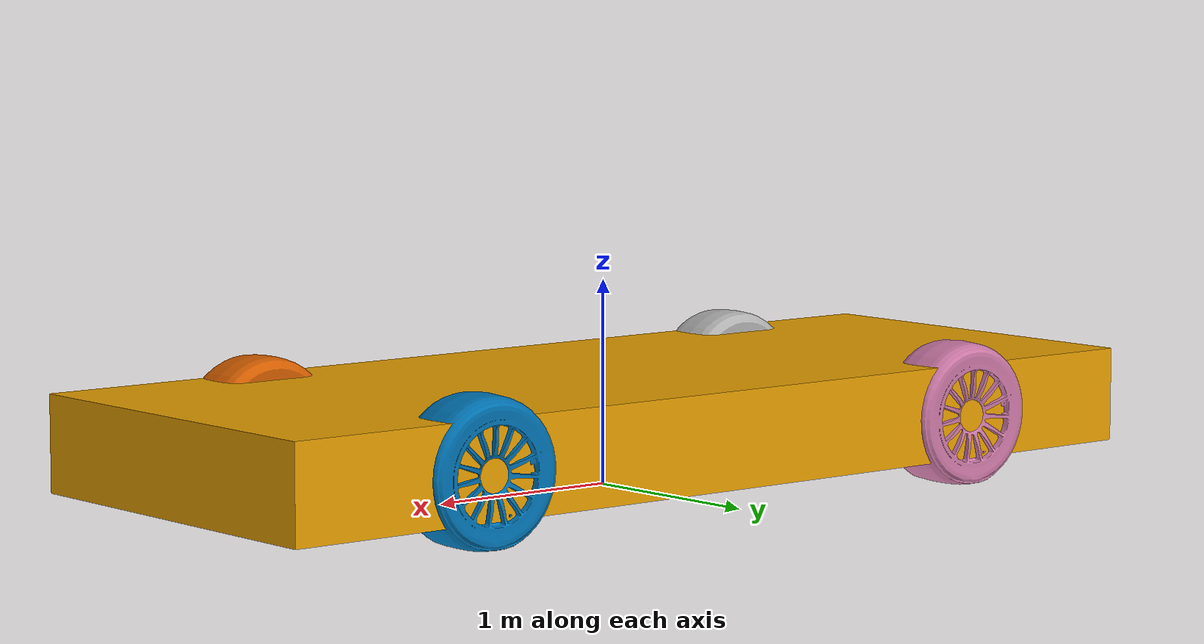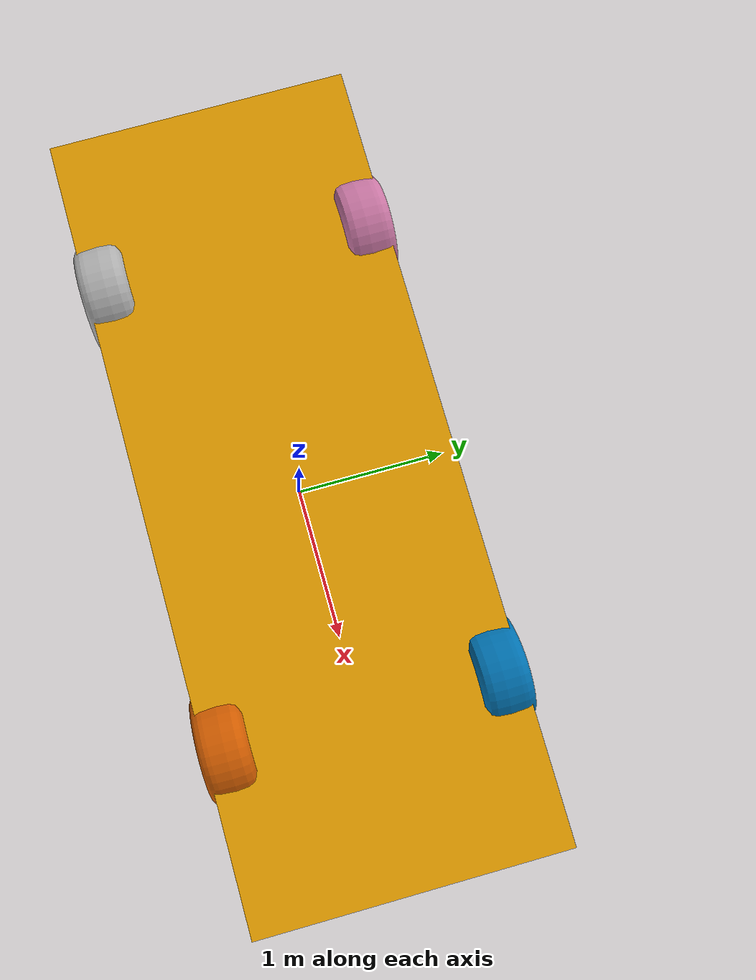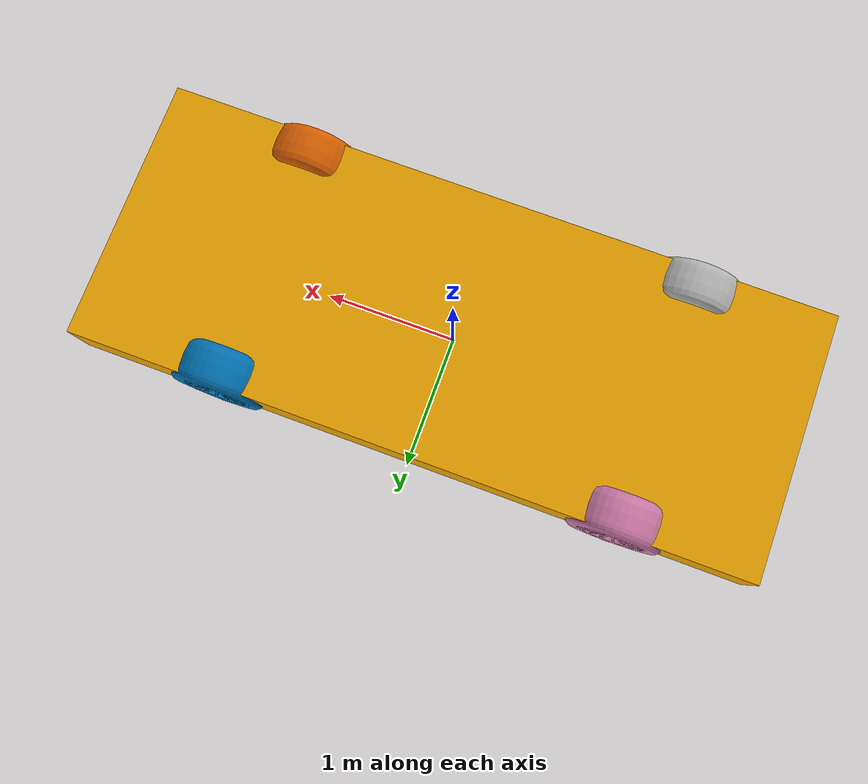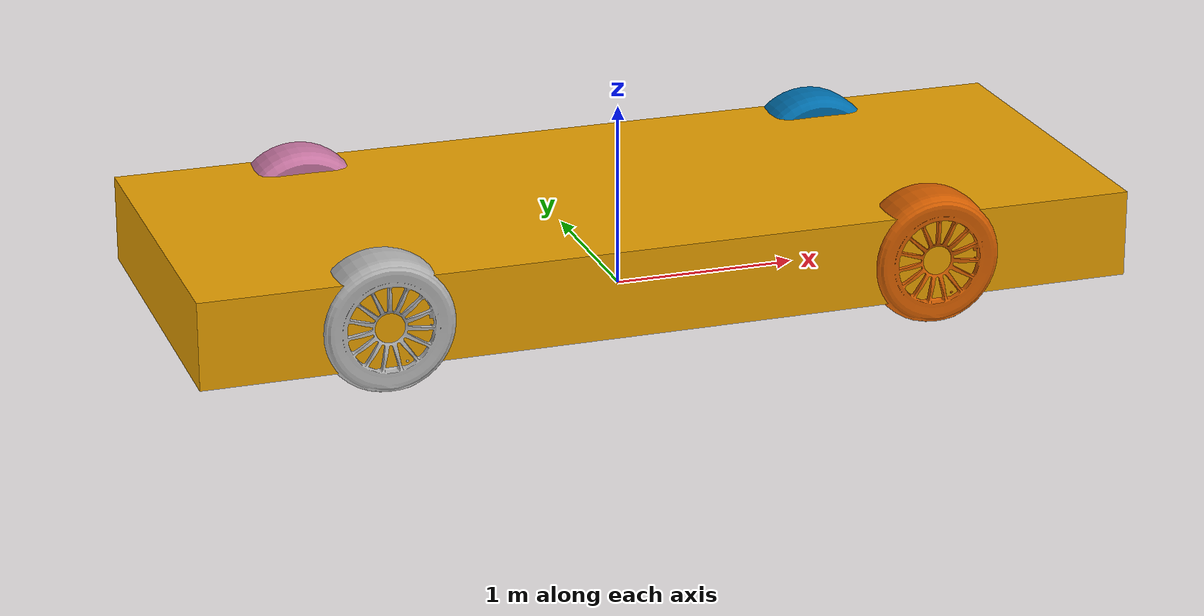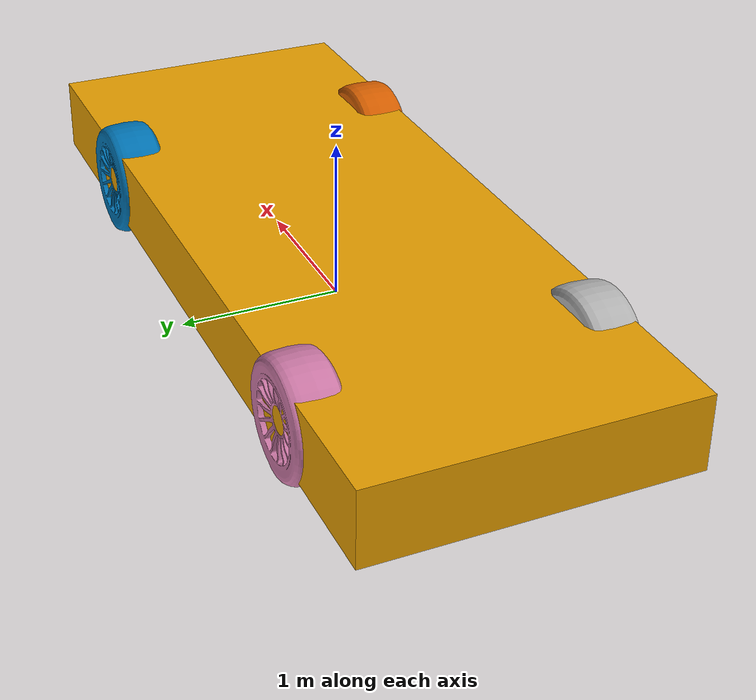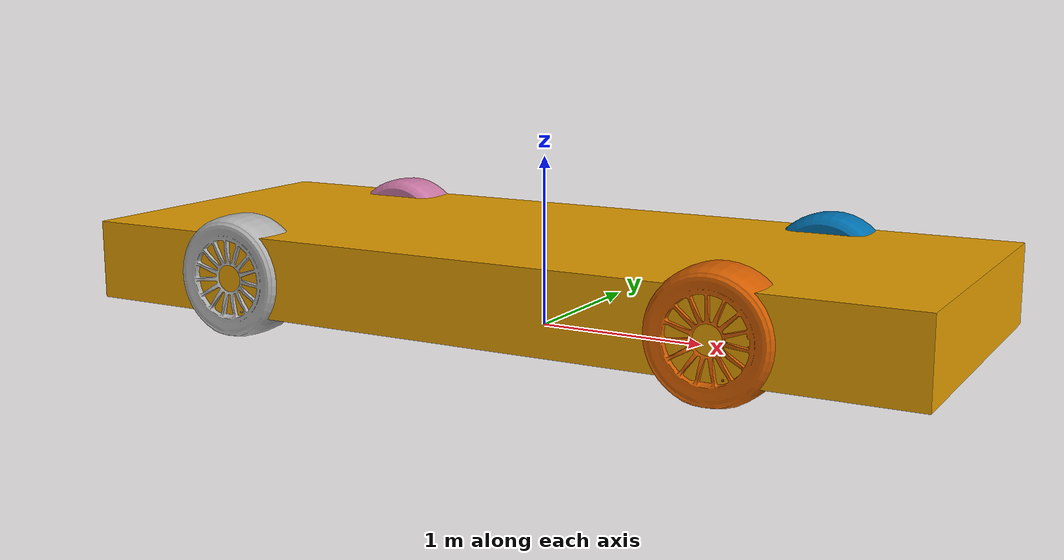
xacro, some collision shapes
<robot xmlns:xacro="http://www.ros.org/wiki/xacro" name="four_wheeled_vehicle">
    <xacro:include filename="$(find four_wheeled_vehicle)/urdf/vehicle/base.urdf.xacro" />
    <xacro:include filename="$(find four_wheeled_vehicle)/urdf/vehicle/actuator/steering.urdf.xacro" />
    <xacro:include filename="$(find four_wheeled_vehicle)/urdf/vehicle/actuator/wheel.urdf.xacro" />
    <xacro:include filename="$(find four_wheeled_vehicle)/urdf/vehicle/sensor/lidar3d.urdf.xacro" />
    <xacro:include filename="$(find four_wheeled_vehicle)/urdf/vehicle/sensor/gps.urdf.xacro" />
    <xacro:include filename="$(find four_wheeled_vehicle)/urdf/vehicle/sensor/imu.urdf.xacro" />
    <xacro:include filename="$(find four_wheeled_vehicle)/urdf/vehicle/sensor/camera.urdf.xacro" />
    <xacro:include filename="$(find four_wheeled_vehicle)/urdf/vehicle/plugin/gazebo_control.xacro" />
    <xacro:include filename="$(find four_wheeled_vehicle)/urdf/vehicle/sensor/laser.urdf.xacro" />
    <xacro:base_xacro />

    <xacro:steering_xacro steering_name="front_left" parent_link="base_link" xyz="1.445 0.833 -0.024" />
    <xacro:steering_xacro steering_name="front_right" parent_link="base_link" xyz="1.445 -0.833 -0.024" />

    <xacro:wheel_xacro wheel_name="front_left" parent_link="front_left_steering_link" xyz="0 0 0" effort="0" velocity="0" />
    <xacro:wheel_right_xacro wheel_name="front_right" parent_link="front_right_steering_link" xyz="0 0 0" effort="0" velocity="0" />
    <xacro:wheel_xacro wheel_name="rear_left" parent_link="base_link" xyz="-1.545 0.833 -0.024" effort="5000" velocity="10000" />
    <xacro:wheel_right_xacro wheel_name="rear_right" parent_link="base_link" xyz="-1.545 -0.833 -0.024" effort="5000" velocity="10000" />

    <xacro:lidar3d_xacro parent_link="base_link" xyz="1.30 0 0.95" />
    <xacro:gps_xacro parent_link="base_link" xyz="-0.50 0 0.95" />
    <xacro:imu_xacro parent_link="base_link" xyz="0 0 0.30" />
    <xacro:camera_xacro parent_link="base_link" xyz="2.20 0 0.60" />
    <xacro:laser_xacro parent_link="base_link" xyz="1.30 0 0.5" />
    <xacro:gazebo_control_plugin />
</robot>

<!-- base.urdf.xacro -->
<robot xmlns:xacro="http://www.ros.org/wiki/xacro">
    <xacro:macro name="base_xacro">
        <link name="base_link">
            <inertial>
                <origin xyz="0 0 0" rpy="0 0 0"/>
                <mass value="2000"/>
                <inertia ixx="1200" ixy="0" ixz="0" iyy="2500" iyz="0" izz="3000"/>
            </inertial>

            <collision name="base_link_collision">
                <origin xyz="0 0 0" rpy="0 0 0"/>
                <geometry>
                    <box size="5.07 1.97 0.47"/>
                </geometry>
            </collision>

            <visual name="base_link_visual">
                <origin xyz="0 0 0" rpy="0 0 0"/>
                <geometry>
                    <mesh filename="file:///home/wu/code/ros2/Pure-tracking-slam-automatic-navigation-system/src/four_wheeled_vehicle/models/four_wheeled_vehicle/meshes/car.dae" scale="1 1 1"/>
                </geometry>
            </visual>
        </link>

        <link name="base_footprint"/>
        <joint name="base_footprint_joint" type="fixed">
            <parent link="base_footprint"/>
            <child link="base_link"/>
            <origin xyz="0 0 0.325" rpy="0 0 0"/>
        </joint>
    </xacro:macro>
</robot>

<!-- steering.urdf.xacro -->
<robot xmlns:xacro="http://www.ros.org/wiki/xacro">
    <xacro:macro name="steering_xacro" params="steering_name parent_link xyz">
        <joint name="${steering_name}_steering_joint" type="revolute">
            <origin xyz="${xyz}" rpy="0 0 0"/>
            <parent link="${parent_link}"/>
            <child link="${steering_name}_steering_link"/>
            <axis xyz="0 0 1"/>
            <limit lower="-0.6" upper="0.6" effort="1000000" velocity="10000"/>
            <dynamics damping="10" friction="0"/>
        </joint>

        <link name="${steering_name}_steering_link">
            <inertial>
                <origin xyz="0 0 0" rpy="0 0 0"/>
                <mass value="5"/>
                <inertia ixx="0.012" ixy="0" ixz="0" iyy="0.025" iyz="0" izz="0.012"/>
            </inertial>

            <visual name="${steering_name}_steering_link_visual">
                <origin xyz="0 0 0" rpy="1.5708 0 0"/>
                <geometry>
                    <cylinder length="0.01" radius="0.1"/>
                </geometry>
            </visual>
        </link>
    </xacro:macro>
</robot>

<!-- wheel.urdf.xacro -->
<robot xmlns:xacro="http://www.ros.org/wiki/xacro">
    <xacro:macro name="wheel_xacro" params="wheel_name parent_link xyz effort velocity">
        <joint name="${wheel_name}_wheel_joint" type="revolute">
            <origin xyz="${xyz}" rpy="0 0 0"/>
            <parent link="${parent_link}"/>
            <child link="${wheel_name}_wheel_link"/>
            <axis xyz="0 1 0"/>
            <limit lower="-10000000000000000" upper="10000000000000000" effort="${effort}" velocity="${velocity}"/>
            <dynamics damping="10.0" friction="0"/>
        </joint>

        <link name="${wheel_name}_wheel_link">
            <inertial>
                <origin xyz="0 0 0" rpy="0 0 0"/>
                <mass value="40"/>
                <inertia ixx="1.4" ixy="0" ixz="0" iyy="2.5" iyz="0" izz="1.4"/>
            </inertial>

            <collision name="${wheel_name}_wheel_link_collision">
                <origin xyz="0 0 0" rpy="1.5708 0 0"/>
                <geometry>
                    <cylinder length="0.35" radius="0.3"/>
                </geometry>
                <surface>
                    <friction>
                        <ode mu="2.0" mu2="1.5" slip1="0.0" slip2="0.0"/>
                    </friction>
                </surface>
            </collision>

            <visual name="${wheel_name}_wheel_link_visual">
                <origin xyz="0 0 0" rpy="0 0 0"/>
                <geometry>
                    <mesh filename="file:///home/wu/code/ros2/Pure-tracking-slam-automatic-navigation-system/src/four_wheeled_vehicle/models/four_wheeled_vehicle/meshes/wheel_l.dae"/>
                </geometry>
            </visual>
        </link>
    </xacro:macro>

    <xacro:macro name="wheel_right_xacro" params="wheel_name parent_link xyz effort velocity">
        <joint name="${wheel_name}_wheel_joint" type="revolute">
            <origin xyz="${xyz}" rpy="0 0 0"/>
            <parent link="${parent_link}"/>
            <child link="${wheel_name}_wheel_link"/>
            <axis xyz="0 1 0"/>
            <limit lower="-10000000000000000" upper="10000000000000000" effort="${effort}" velocity="${velocity}"/>
            <dynamics damping="10.0" friction="0"/>
        </joint>

        <link name="${wheel_name}_wheel_link">
            <inertial>
                <origin xyz="0 0 0" rpy="0 0 0"/>
                <mass value="40"/>
                <inertia ixx="1.4" ixy="0" ixz="0" iyy="2.5" iyz="0" izz="1.4"/>
            </inertial>

            <collision name="${wheel_name}_wheel_link_collision">
                <origin xyz="0 0 0" rpy="1.5708 0 0"/>
                <geometry>
                    <cylinder length="0.35" radius="0.3"/>
                </geometry>
                <surface>
                    <friction>
                        <ode mu="2.0" mu2="1.5" slip1="0.0" slip2="0.0"/>
                    </friction>
                </surface>
            </collision>

            <visual name="${wheel_name}_wheel_link_visual">
                <origin xyz="0 0 0" rpy="0 0 0"/>
                <geometry>
                    <mesh filename="file:///home/wu/code/ros2/Pure-tracking-slam-automatic-navigation-system/src/four_wheeled_vehicle/models/four_wheeled_vehicle/meshes/wheel_r.dae"/>
                </geometry>
            </visual>
        </link>
    </xacro:macro>
</robot>

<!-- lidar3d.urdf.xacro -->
<robot xmlns:xacro="http://www.ros.org/wiki/xacro">
    <xacro:macro name="lidar3d_xacro" params="parent_link xyz">
        <link name="lidar3d_link">
        </link>

        <joint name="lidar3d_fixed_joint" type="fixed">
            <parent link="${parent_link}"/>
            <child link="lidar3d_link"/>
            <origin xyz="${xyz}" rpy="0 0 0"/>
        </joint>

        <gazebo reference="lidar3d_link">
            <sensor type="ray" name="lidar3d">
                <always_on>true</always_on>
                <update_rate>10</update_rate>
                <visualize>false</visualize>
                <ray>
                    <scan>
                        <horizontal>
                            <samples>360</samples>
                            <resolution>1</resolution>
                            <min_angle>-1.3962634</min_angle>
                            <max_angle>1.3962634</max_angle>
                        </horizontal>
                        <vertical>
                            <samples>32</samples>
                            <resolution>1</resolution>
                            <min_angle>-0.261799</min_angle>
                            <max_angle>0.261799</max_angle>
                        </vertical>
                    </scan>
                    <range>
                        <min>0.3</min>
                        <max>100.0</max>
                        <resolution>0.01</resolution>
                    </range>
                    <noise>
                        <type>gaussian</type>
                        <mean>0.0</mean>
                        <stddev>0.02</stddev>
                    </noise>
                </ray>
                <plugin name="gazebo_ros_laser" filename="libgazebo_ros_ray_sensor.so">
                    <ros>
                        <namespace>/vehicle</namespace>
                        <remapping>~/out:=/points_raw</remapping>
                    </ros>
                    <frame_name>lidar3d_link</frame_name>
                </plugin>
            </sensor>
        </gazebo>
    </xacro:macro>
</robot>

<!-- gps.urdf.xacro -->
<robot xmlns:xacro="http://www.ros.org/wiki/xacro">
    <xacro:macro name="gps_xacro" params="parent_link xyz">
        <link name="gps_link">
        </link>

        <joint name="gps_fixed_joint" type="fixed">
            <parent link="${parent_link}"/>
            <child link="gps_link"/>
            <origin xyz="${xyz}" rpy="0 0 0"/>
        </joint>

        <gazebo reference="gps_link">
            <sensor type="gps" name="gps">
                <always_on>true</always_on>
                <update_rate>10</update_rate>
                <plugin name="gazebo_ros_gps_sensor" filename="libgazebo_ros_gps_sensor.so">
                    <ros>
                        <remapping>~/out:=gps/fix</remapping>
                        <remapping>~/velocity:=gps/vel</remapping>
                    </ros>
                    <frame_name>gps_link</frame_name>
                </plugin>
            </sensor>
        </gazebo>
    </xacro:macro>
</robot>

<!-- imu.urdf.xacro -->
<robot xmlns:xacro="http://www.ros.org/wiki/xacro">
    <xacro:macro name="imu_xacro" params="parent_link xyz">
        <link name="imu_link">
        </link>

        <joint name="imu_fixed_joint" type="fixed">
            <parent link="${parent_link}"/>
            <child link="imu_link"/>
            <origin xyz="${xyz}" rpy="0 0 0"/>
        </joint>

        <gazebo reference="imu_link">
            <sensor type="imu" name="imu">
                <always_on>true</always_on>
                <update_rate>200</update_rate>
                <imu>
                    <noise>
                        <type>gaussian</type>
                        <accel>
                            <mean>0.0</mean>
                            <stddev>0.05</stddev>
                            <bias_mean>0.0</bias_mean>
                            <bias_stddev>0.0001</bias_stddev>
                        </accel>
                        <gyro>
                            <mean>0.0</mean>
                            <stddev>0.001</stddev>
                            <bias_mean>0.0</bias_mean>
                            <bias_stddev>0.0001</bias_stddev>
                        </gyro>
                    </noise>
                </imu>
                <plugin name="gazebo_ros_imu_sensor" filename="libgazebo_ros_imu_sensor.so">
                    <ros>
                        <namespace>/vehicle</namespace>
                        <remapping>~/out:=/imu_raw</remapping>
                    </ros>
                    <frame_name>imu_link</frame_name>
                </plugin>
            </sensor>
        </gazebo>
    </xacro:macro>
</robot>

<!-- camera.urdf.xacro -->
<robot xmlns:xacro="http://www.ros.org/wiki/xacro">
    <xacro:macro name="camera_xacro" params="parent_link xyz">
        <link name="camera_link">
        </link>

        <joint name="camera_fixed_joint" type="fixed">
            <parent link="${parent_link}"/>
            <child link="camera_link"/>
            <origin xyz="${xyz}" rpy="0 0 0"/>
        </joint>

        <gazebo reference="camera_link">
            <sensor type="camera" name="front_camera">
                <always_on>true</always_on>
                <update_rate>30</update_rate>
                <camera>
                    <horizontal_fov>1.3962634</horizontal_fov>
                    <image>
                        <width>1280</width>
                        <height>720</height>
                        <format>R8G8B8</format>
                    </image>
                    <clip>
                        <near>0.05</near>
                        <far>200.0</far>
                    </clip>
                    <distortion>
                        <k1>0</k1>
                        <k2>0</k2>
                        <k3>0</k3>
                        <p1>0</p1>
                        <p2>0</p2>
                    </distortion>
                </camera>
                <plugin name="gazebo_ros_camera" filename="libgazebo_ros_camera.so">
                    <ros>
                        <namespace>/vehicle</namespace>
                        <remapping>~/image_raw:=/image_raw</remapping>
                        <remapping>~/camera_info:=/camera_info</remapping>
                    </ros>
                    <frame_name>camera_link</frame_name>
                </plugin>
            </sensor>
        </gazebo>
    </xacro:macro>
</robot>

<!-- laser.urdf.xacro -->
<robot xmlns:xacro="http://www.ros.org/wiki/xacro">
    <xacro:macro name="laser_xacro" params="parent_link xyz">
        <link name="laser_link">
        </link>

        <joint name="laser_fixed_joint" type="fixed">
            <parent link="${parent_link}"/>
            <child link="laser_link"/>
            <origin xyz="${xyz}" rpy="0 0 0"/>
        </joint>

        <gazebo reference="laser_link">
            <sensor type="ray" name="laser">
                <always_on>true</always_on>
                <update_rate>5</update_rate>
                <visualize>true</visualize>
                <ray>
                    <scan>
                        <horizontal>
                            <samples>360</samples>
                            <resolution>1</resolution>
                            <min_angle>-3.14159</min_angle>
                            <max_angle>3.14159</max_angle>
                        </horizontal>
                    </scan>
                    <range>
                        <min>0.1</min>
                        <max>30.0</max>
                        <resolution>0.01</resolution>
                    </range>
                    <noise>
                        <type>gaussian</type>
                        <mean>0.0</mean>
                        <stddev>0.01</stddev>
                    </noise>
                </ray>
                <plugin name="gazebo_ros_laser" filename="libgazebo_ros_ray_sensor.so">
                    <ros>
                        <namespace>/</namespace>
                        <remapping>~/out:=scan</remapping>
                    </ros>
                    <output_type>sensor_msgs/LaserScan</output_type>
                    <frame_name>laser_link</frame_name>
                </plugin>
            </sensor>
        </gazebo>
    </xacro:macro>
</robot>
